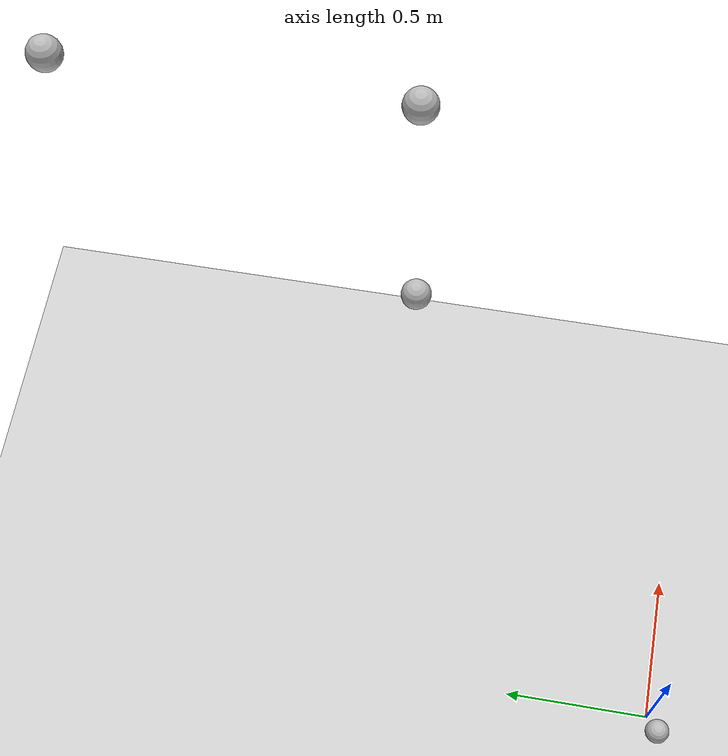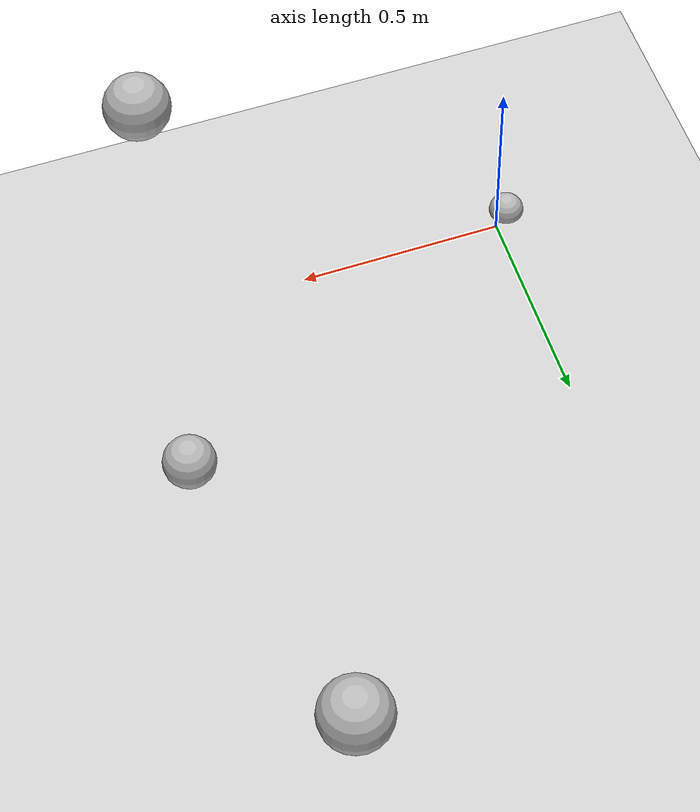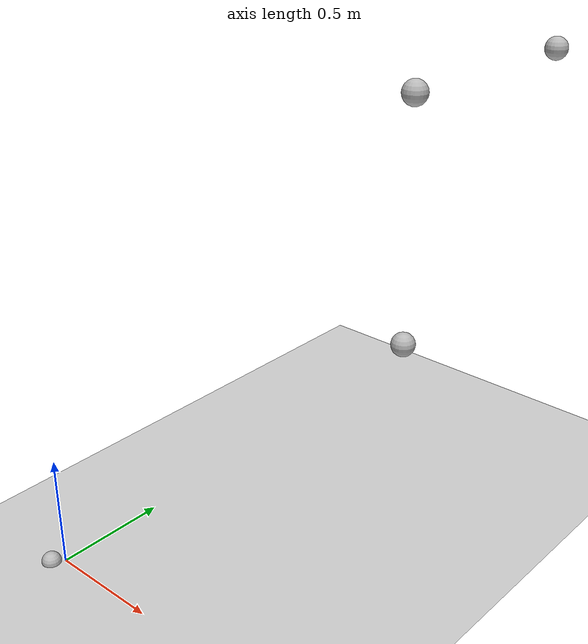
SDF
<?xml version="1.0" ?>
<sdf version="1.5">
  <world name="default">
    <physics type="ode">
      <gravity>0 0 0</gravity>
      <max_step_size>0.0000001</max_step_size>
      <real_time_factor>1</real_time_factor>
      <real_time_update_rate>1000000</real_time_update_rate>
      <ode>
        <solver>
          <type>quick</type>
          <iters>50</iters>
          <sor>1.4</sor>
        </solver>
        <constraints>
          <cfm>0</cfm>
          <erp>1</erp>
          <contact_max_correcting_vel>0</contact_max_correcting_vel>
          <contact_surface_layer>0</contact_surface_layer>
        </constraints>
      </ode>
    </physics>

    <!-- A global light source -->
    <include>
      <uri>model://sun</uri>
    </include>

    <!-- A ground plane -->
    <include>
      <uri>model://ground_plane</uri>
    </include>

    <!-- A velodyne  -->
    <include>
      <uri>model://velodyne</uri>
    </include>

    <!-- A tracking ball -->
    <include>
      <uri>model://ball</uri>
      <name>ballA</name>
      <pose>1 1 1 0 0 0</pose>
    </include>

    <!-- A tracking ball -->
    <include>
      <uri>model://ball</uri>
      <name>ballB</name>
      <pose>1 1 2 0 0 0</pose>
    </include>

    <!-- A tracking ball -->
    <include>
      <uri>model://ball</uri>
      <name>ballC</name>
      <pose>1 2 2 0 0 0</pose>
    </include>

    <plugin name="scan" filename="libscan.so">
      <modelNameA>ballA</modelNameA>
      <modelNameB>ballB</modelNameB>
      <modelNameC>ballC</modelNameC>
      <rayModelName>velodyne_hdl-32</rayModelName>
    </plugin>
    <plugin name="lighthouse" filename="liblighthouse.so"/>
  </world>
</sdf>

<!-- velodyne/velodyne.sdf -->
<sdf version="1.5">
  <model name="velodyne_hdl-32">
      <link name="base">
      <pose>-0.04267 -0.04267 0 0 0 -0.78535</pose>
        <inertial>
          <mass>0.1</mass>
          <inertia>
            <ixx>0.000090623</ixx>
            <iyy>0.000090623</iyy>
            <izz>0.000091036</izz>
            <ixy>0</ixy>
            <ixz>0</ixz>
            <iyz>0</iyz>
          </inertia>
        </inertial>
        <collision name="base_collision">
          <geometry>
            <sphere>
              <radius>0.04267</radius>
            </sphere>
          </geometry>
        </collision>

        <visual name="base_visual">
          <geometry>
            <sphere>
              <radius>0.04267</radius>
            </sphere>
          </geometry>
        </visual>
      </link>

      <link name="top">
      <pose>0 0 0.02133 0 0 0</pose>
        <inertial>
          <mass>0.0000000000001</mass>
          <inertia>
            <ixx>0.000090623</ixx>
            <iyy>0.000090623</iyy>
            <izz>0.000091036</izz>
            <ixy>0</ixy>
            <ixz>0</ixz>
            <iyz>0</iyz>
          </inertia>
        </inertial>
        <collision name="top_collision">
          <geometry>
            <sphere>
              <radius>0.001</radius>
            </sphere>
          </geometry>
        </collision>

        <visual name="top_visual">
          <geometry>
            <sphere>
              <radius>0.001</radius>
            </sphere>
          </geometry>
        </visual>
        <sensor type="ray" name="sensor">
          <pose>0 0 0 1.5707 0 0</pose>
          <visualize>true</visualize>
          <update_rate>30</update_rate>
          <ray>
            <scan>
              <horizontal>
                <samples>200</samples>
                <resolution>1</resolution>
                <min_angle>-0.78535</min_angle>
                <max_angle>0.78535</max_angle>
              </horizontal>
            </scan>
            <range>
              <min>0.05</min>
              <max>10</max>
              <resolution>0.02</resolution>
            </range>
          </ray>
        <plugin name="RayPlugin" filename="libRayPlugin.so">
          <modelName>velodyne_hdl-32</modelName>
          <linkName>top</linkName>
        </plugin>
        </sensor>
      </link>

      <joint type="ball" name="joint">
        <parent>base</parent>
        <child>top</child>
      </joint>
    </model>
</sdf>

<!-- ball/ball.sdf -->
<sdf version="1.5">
<model name="ball">
    <link name="link">
      <collision name="collision">
        <geometry>
          <sphere>
            <radius>0.05</radius>
          </sphere>
        </geometry>
      </collision>
      <visual name="visual">
        <geometry>
          <sphere>
            <radius>0.05</radius>
          </sphere>
        </geometry>
        <plugin name="blink" filename="libBlinkVisualPlugin.so">
          <color_a>1 0 0 1</color_a>
          <color_b>1 0 0 0</color_b>
          <period>10</period>
        </plugin>
      </visual>
    </link>
  </model>
</sdf>
